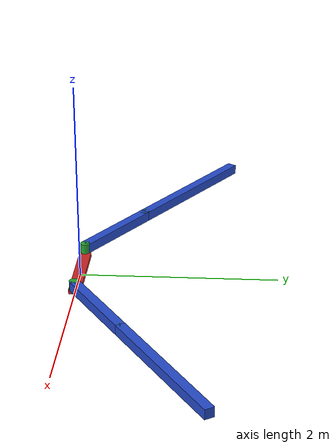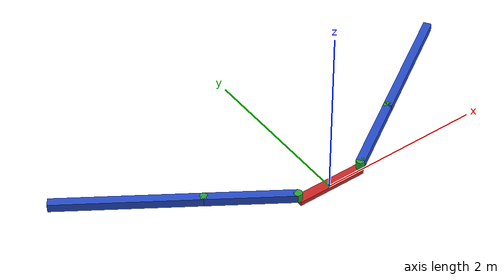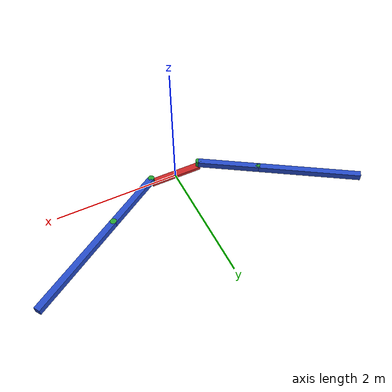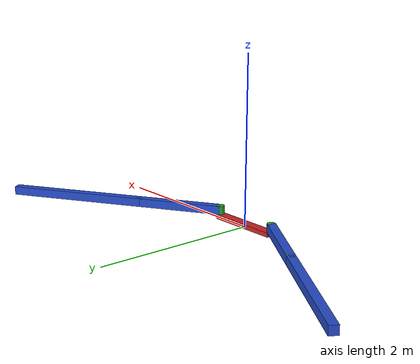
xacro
<?xml version="1.0"?>
<!-- Scara manipulator -->
<robot xmlns:xacro="http://www.ros.org/wiki/xacro" name="pant">

    <!-- Import scara urdf file -->
    <xacro:include filename="$(find pant_description)/urdf/pant.urdf" />

    <!-- Import scara materials file -->
    <xacro:include filename="$(find pant_description)/config/materials.urdf" />

    <!-- Import scara ros2_control description -->
    <xacro:include filename="$(find pant_description)/ros2_control/pant.ros2_control.urdf" />

    <!-- Import all Gazebo-customization elements -->
    <xacro:include filename="$(find pant_description)/gazebo/scara.gazebo.xacro"/>

</robot>

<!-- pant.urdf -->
<robot name = "pant" xmlns:xacro="http://www.ros.org/wiki/xacro">

  <!-- Used for fixing robot to 'base_link' -->
  <link name="world"/>

  <!-- Base Link -->
  <link name = "base_link">
    <visual>
      <geometry>
        <box size = "0.85 0.12 0.05"/>
      </geometry>
      <material name = "red"/>
      <origin xyz = "0 0 0.025"/>
    </visual>
    <inertial>
      <mass value="1" />
      <origin xyz="0 0 0.025" rpy="0 0 0" />
      <inertia ixx="1" ixy="0" ixz="0" iyy="1" iyz="0" izz="1" />
    </inertial>
    <collision>
      <geometry>
        <box size = "0.85 0.12 0.05"/>
      </geometry>
      <material name = "blue"/>
      <origin xyz = "0 0 0.025"/>
    </collision>
  </link>

  <joint name="base2world" type="fixed">
    <parent link="world"/>
    <child link="base_link"/>
  </joint>

  <!-- revolute1 -->
  <link name = "revolute1">
    <visual>
      <geometry>
        <cylinder length = "0.1" radius = "0.05"/>
      </geometry>
      <material name = "green"/>
      <origin xyz = "0 0 0.05"/>
    </visual>
    <inertial>
      <mass value="0.5" />
      <origin xyz="0 0 0.05" rpy="0 0 0" />
      <inertia ixx="0.5" ixy="0" ixz="0" iyy="0.5" iyz="0" izz="0.5" />
    </inertial>
    <collision>
      <geometry>
        <cylinder length = "0.1" radius = "0.05"/>
      </geometry>
      <material name = "green"/>
      <origin xyz = "0 0 0.225"/>
    </collision>
  </link>

  <joint name = "joint1" type="revolute">
    <parent link = "base_link"/>
    <child link = "revolute1"/>
    <origin xyz = "-0.425 0 0.05" rpy = "0 0 2.5656"/>
    <limit effort="1000.0" lower="-3.14" upper="3.14" velocity="0.5"/>
    <axis xyz = "0 0 1"/>
    <dynamics damping="0.2" friction="0.1" />
  </joint>

  <!-- link 1 -->
  <link name = "link1">
    <visual>
      <geometry>
        <box size = "1 0.1 0.1"/>
      </geometry>
      <material name = "blue"/>
      <origin rpy = "0 0 0" xyz = "0.5 0 0"/>
    </visual>
    <inertial>
      <mass value="0.5" />
      <origin xyz="0.425 0 0" rpy="0 0 0" />
      v<inertia ixx="0.5" ixy="0" ixz="0" iyy="0.5" iyz="0" izz="0.5" />
    </inertial>
    <collision>
      <geometry>
        <box size = "0.1 0.1 1"/>
      </geometry>
      <material name = "blue"/>
      <origin rpy = "0 0 0" xyz = "-0.925 0 0"/>
    </collision>
  </link>

  <joint name = "link12revolute1" type="fixed">
    <parent link = "revolute1"/>
    <child link = "link1"/>
    <origin xyz = "0 0 0.05"/>
  </joint>

  <!-- revolute 2 -->
  <link name = "revolute2">
    <visual>
      <geometry>
        <cylinder length = "0.1" radius = "0.05"/>
      </geometry>
      <material name = "green"/>
      <origin xyz = "0 0 0.05"/>
    </visual>
    <inertial>
      <mass value="0.5" />
      <origin xyz="0 0 0.05" rpy="0 0 0" />
      <inertia ixx="0.5" ixy="0" ixz="0" iyy="0.5" iyz="0" izz="0.5" />
    </inertial>
    <collision>
      <geometry>
        <cylinder length = "0.1" radius = "0.05"/>
      </geometry>
      <material name = "green"/>
      <origin xyz = "0 0 0.225"/>
    </collision>
  </link>

  <joint name = "joint2" type="revolute">
    <parent link = "base_link"/>
    <child link = "revolute2"/>
    <origin xyz = "0.425 0 0.05" rpy = "0 0 0.576"/>
    <limit effort="1000.0" lower="-3.14" upper="3.14" velocity="0.5"/>
    <axis xyz = "0 0 1"/>
    <dynamics damping="0.2" friction="0.1" />
  </joint>

  <!-- link 2 -->
  <link name = "link2">
    <visual>
      <geometry>
        <box size = "1 0.1 0.1"/>
      </geometry>
      <material name = "blue"/>
      <origin rpy = "0 0 0" xyz = "0.5 0 0"/>
    </visual>
    <inertial>
      <mass value="0.5" />
      <origin xyz="0.425 0 0" rpy="0 0 0" />
      v<inertia ixx="0.5" ixy="0" ixz="0" iyy="0.5" iyz="0" izz="0.5" />
    </inertial>
    <collision>
      <geometry>
        <box size = "0.1 0.1 1"/>
      </geometry>
      <material name = "blue"/>
      <origin rpy = "0 0 0" xyz = "0.5 0 0"/>
    </collision>
  </link>

  <joint name = "link22revolute2" type="fixed">
    <parent link = "revolute2"/>
    <child link = "link2"/>
    <origin xyz = "0 0 0.05"/>
  </joint>

  <!-- revolute 3 -->
  <link name = "revolute3">
    <visual>
      <geometry>
        <cylinder length = "0.1" radius = "0.05"/>
      </geometry>
      <material name = "green"/>
      <origin rpy = "0 0 0" xyz = "0 0 0"/>
    </visual>
    <inertial>
      <mass value="0.5" />
      <origin xyz="0 0 0" rpy="0 0 0" />
      v<inertia ixx="0.5" ixy="0" ixz="0" iyy="0.5" iyz="0" izz="0.5" />
    </inertial>
    <collision>
      <geometry>
        <cylinder length = "0.1" radius = "0.05"/>
      </geometry>
      <material name = "green"/>
      <origin rpy = "0 0 0" xyz = "0 0 0"/>
    </collision>
  </link>

  <joint name = "joint3" type="revolute">
    <parent link = "link1"/>
    <child link = "revolute3"/>
    <origin xyz = "1 0 0"/>
    <limit effort="1000.0" lower="-3.14" upper="3.14" velocity="0.5"/>
    <axis xyz = "0 0 1"/>
    <dynamics damping="0.2" friction="0.1" />
  </joint>

  <!-- link 3 -->
  <link name = "link3">
    <visual>
      <geometry>
        <box size = "1.65 0.1 0.1"/>
      </geometry>
      <material name = "blue"/>
      <origin rpy = "0 0 0" xyz = "0 0 0"/>
    </visual>
    <inertial>
      <mass value="0.5" />
      <origin xyz="0 0 0" rpy="0 0 0" />
      v<inertia ixx="0.5" ixy="0" ixz="0" iyy="0.5" iyz="0" izz="0.5" />
    </inertial>
    <collision>
      <geometry>
        <box size = "1.65 0.1 0.1"/>
      </geometry>
      <material name = "blue"/>
      <origin rpy = "0 0 0" xyz = "0 0 0"/>
    </collision>
  </link>

  <joint name = "link32revolute3" type="fixed">
    <parent link = "revolute3"/>
    <child link = "link3"/>
    <origin xyz = "0.825 0 0"/>
  </joint>

  <!-- revolute 4 -->
  <link name = "revolute4">
    <visual>
      <geometry>
        <cylinder length = "0.1" radius = "0.05"/>
      </geometry>
      <material name = "green"/>
      <origin rpy = "0 0 0" xyz = "0 0 0"/>
    </visual>
    <inertial>
      <mass value="0.5" />
      <origin xyz="0 0 0" rpy="0 0 0" />
      v<inertia ixx="0.5" ixy="0" ixz="0" iyy="0.5" iyz="0" izz="0.5" />
    </inertial>
    <collision>
      <geometry>
        <cylinder length = "0.1" radius = "0.05"/>
      </geometry>
      <material name = "green"/>
      <origin rpy = "0 0 0" xyz = "0 0 0"/>
    </collision>
  </link>

  <joint name = "joint4" type="revolute">
    <parent link = "link2"/>
    <child link = "revolute4"/>
    <origin xyz = "1 0 0"/>
    <limit effort="1000.0" lower="-3.14" upper="3.14" velocity="0.5"/>
    <axis xyz = "0 0 1"/>
    <dynamics damping="0.2" friction="0.1" />
  </joint>

  <!-- link 4 -->
  <link name = "link4">
    <visual>
      <geometry>
        <box size = "1.65 0.1 0.1"/>
      </geometry>
      <material name = "blue"/>
      <origin rpy = "0 0 0" xyz = "0 0 0"/>
    </visual>
    <inertial>
      <mass value="0.5" />
      <origin xyz="0 0 0" rpy="0 0 0" />
      v<inertia ixx="0.5" ixy="0" ixz="0" iyy="0.5" iyz="0" izz="0.5" />
    </inertial>
    <collision>
      <geometry>
        <box size = "1.65 0.1 0.1"/>
      </geometry>
      <material name = "blue"/>
      <origin rpy = "0 0 0" xyz = "0 0 0"/>
    </collision>
  </link>

  <joint name = "link42revolute4" type="fixed">
    <parent link = "revolute4"/>
    <child link = "link4"/>
    <origin xyz = "0.825 0 0"/>
  </joint>

</robot>
